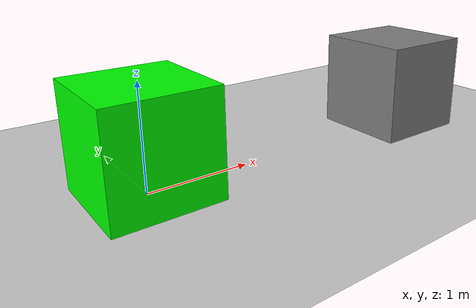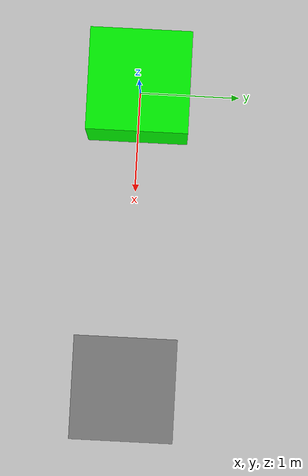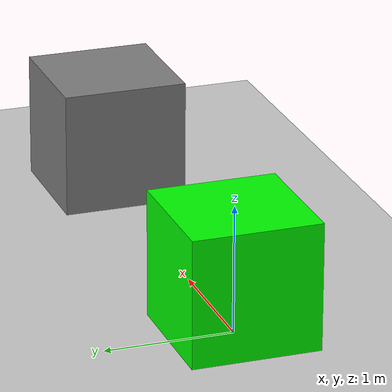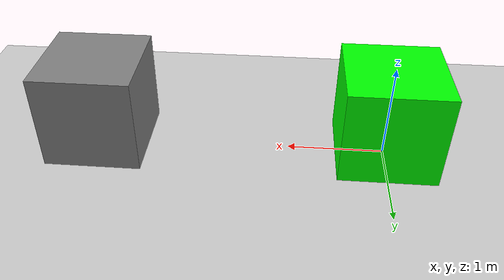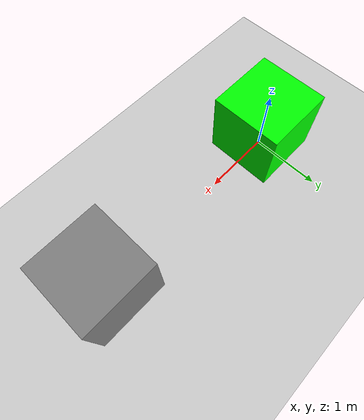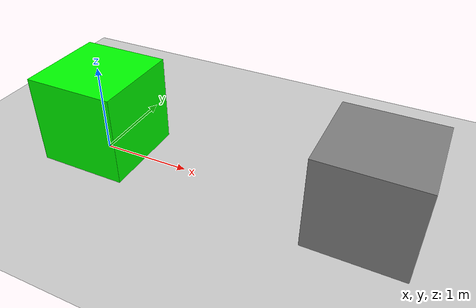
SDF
<?xml version="1.0" ?>

<sdf version="1.6">
  <world name="logical_audio_sensor">
    <physics name="1ms" type="ignored">
      <max_step_size>0.001</max_step_size>
      <real_time_factor>1.0</real_time_factor>
    </physics>
    <plugin
      filename="ignition-gazebo-physics-system"
      name="ignition::gazebo::systems::Physics">
    </plugin>
    <plugin
      filename="ignition-gazebo-user-commands-system"
      name="ignition::gazebo::systems::UserCommands">
    </plugin>
    <plugin
      filename="ignition-gazebo-scene-broadcaster-system"
      name="ignition::gazebo::systems::SceneBroadcaster">
    </plugin>

    <scene>
      <ambient>1.0 1.0 1.0</ambient>
      <background>0.8 0.8 0.8</background>
    </scene>

    <light type="directional" name="sun">
      <cast_shadows>true</cast_shadows>
      <pose>0 0 10 0 0 0</pose>
      <diffuse>0.8 0.8 0.8 1</diffuse>
      <specular>0.8 0.8 0.8 1</specular>
      <attenuation>
        <range>1000</range>
        <constant>0.9</constant>
        <linear>0.01</linear>
        <quadratic>0.001</quadratic>
      </attenuation>
      <direction>-0.5 0.1 -0.9</direction>
    </light>

    <model name="ground_plane">
      <static>true</static>
      <link name="link">
        <collision name="collision">
          <geometry>
            <plane>
              <normal>0 0 1</normal>
            </plane>
          </geometry>
        </collision>
        <visual name="visual">
          <geometry>
            <plane>
              <normal>0 0 1</normal>
              <size>100 100</size>
            </plane>
          </geometry>
          <material>
            <ambient>0.8 0.8 0.8 1</ambient>
            <diffuse>0.8 0.8 0.8 1</diffuse>
            <specular>0.8 0.8 0.8 1</specular>
          </material>
        </visual>
      </link>
    </model>

    <model name="green_box_speaker">
          <pose>0 0 0.5 0 0 0</pose>
          <link name="link">
            <visual name="visual">
              <geometry><box><size>1 1 1</size></box></geometry>
              <material>
                <ambient>0 1 0 1</ambient>
                <diffuse>0 1 0 1</diffuse>
              </material>
            </visual>
          </link>
          <plugin filename="ignition-gazebo-logicalaudiosensorplugin-system" name="ignition::gazebo::systems::LogicalAudioSensorPlugin">
            <source>
              <id>1</id>
              <pose>0 0 0 0 0 0</pose>
              <attenuation_function>linear</attenuation_function>
              <attenuation_shape>sphere</attenuation_shape>
              <inner_radius>1.0</inner_radius>
              <falloff_distance>10.0</falloff_distance>
              <volume_level>1.0</volume_level>
              <playing>true</playing>
              <play_duration>0</play_duration> </source>
          </plugin>
        </model>

        <model name="grey_box_listener">
          <pose>3 0 0.5 0 0 0</pose>
          <link name="link">
            <visual name="visual">
              <geometry><box><size>1 1 1</size></box></geometry>
              <material>
                <ambient>0.5 0.5 0.5 1</ambient>
                <diffuse>0.5 0.5 0.5 1</diffuse>
              </material>
            </visual>
          </link>
          <plugin filename="ignition-gazebo-logicalaudiosensorplugin-system" name="ignition::gazebo::systems::LogicalAudioSensorPlugin">
            <microphone>
              <id>1</id>
              <pose>0 0 0 0 0 0</pose>
              <volume_threshold>0.1</volume_threshold>
            </microphone>
          </plugin>
        </model>

      </world>
    </sdf>
